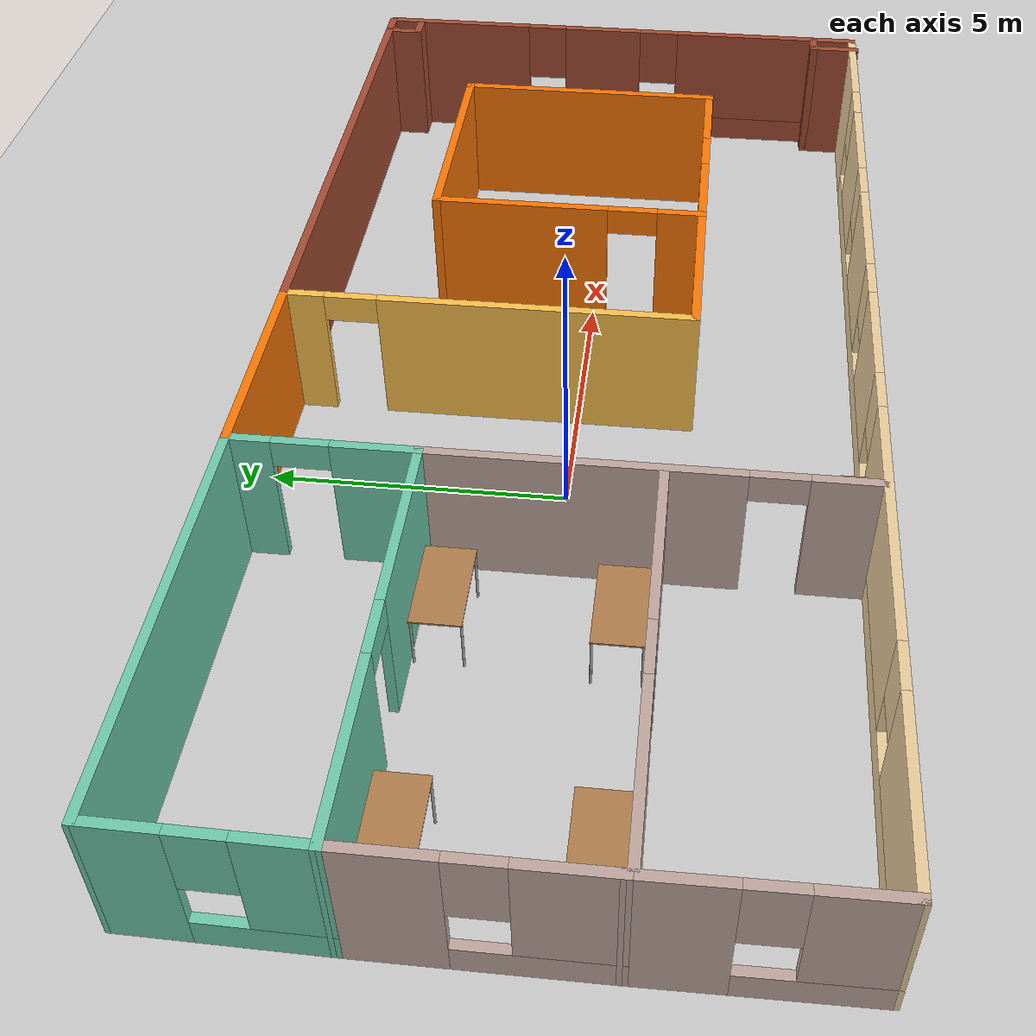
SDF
<sdf version="1.6">
 <world name="default">
  <model name="ground_plane">
   <static>1</static>
   <link name="link">
    <collision name="collision">
     <geometry><plane><normal>0 0 1</normal><size>100 100</size></plane></geometry>
     <surface>
      <contact><collide_bitmask>65535</collide_bitmask></contact>
      <friction><ode><mu>100</mu><mu2>50</mu2></ode></friction>
     </surface>
    </collision>
    <visual name="visual">
     <cast_shadows>0</cast_shadows>
     <geometry><plane><normal>0 0 1</normal><size>100 100</size></plane></geometry>
     <material>
      <script><uri>file://media/materials/scripts/gazebo.material</uri><name>Gazebo/Grey</name></script>
     </material>
    </visual>
   </link>
  </model>
  <model name="Some_Building">
   <pose>1.71741 0.02283 0 0 -0 0</pose>
   <link name="Wall_13">
    <pose>3.76972 -1.9787 0 0 -0 0</pose>
    <visual name="Wall_13_Visual_0">
     <pose>-1.25808 0 1.25 0 -0 0</pose>
     <geometry><box><size>4.73385 0.15 2.5</size></box></geometry>
     <material>
      <script><uri>file://media/materials/scripts/gazebo.material</uri><name>Gazebo/Grey</name></script>
      <ambient>0.996078 0.47451 0.0196078 1</ambient>
     </material>
     <meta><layer>0</layer></meta>
    </visual>
    <collision name="Wall_13_Collision_0">
     <geometry><box><size>4.73385 0.15 2.5</size></box></geometry>
     <pose>-1.25808 0 1.25 0 -0 0</pose>
    </collision>
    <visual name="Wall_13_Visual_1">
     <pose>2.81692 0 1.25 0 -0 0</pose>
     <geometry><box><size>1.61615 0.15 2.5</size></box></geometry>
     <material>
      <script><uri>file://media/materials/scripts/gazebo.material</uri><name>Gazebo/Grey</name></script>
      <ambient>0.996078 0.47451 0.0196078 1</ambient>
     </material>
     <meta><layer>0</layer></meta>
    </visual>
    <collision name="Wall_13_Collision_1">
     <geometry><box><size>1.61615 0.15 2.5</size></box></geometry>
     <pose>2.81692 0 1.25 0 -0 0</pose>
    </collision>
    <visual name="Wall_13_Visual_2">
     <pose>1.55885 0 2.25 0 -0 0</pose>
     <geometry><box><size>0.9 0.15 0.5</size></box></geometry>
     <material>
      <script><uri>file://media/materials/scripts/gazebo.material</uri><name>Gazebo/Grey</name></script>
      <ambient>0.996078 0.47451 0.0196078 1</ambient>
     </material>
     <meta><layer>0</layer></meta>
    </visual>
    <collision name="Wall_13_Collision_2">
     <geometry><box><size>0.9 0.15 0.5</size></box></geometry>
     <pose>1.55885 0 2.25 0 -0 0</pose>
    </collision>
   </link>
   <link name="Wall_14">
    <collision name="Wall_14_Collision">
     <geometry><box><size>5 0.15 2.5</size></box></geometry>
     <pose>0 0 1.25 0 -0 0</pose>
    </collision>
    <visual name="Wall_14_Visual">
     <pose>0 0 1.25 0 -0 0</pose>
     <geometry><box><size>5 0.15 2.5</size></box></geometry>
     <material>
      <script><uri>file://media/materials/scripts/gazebo.material</uri><name>Gazebo/Grey</name></script>
      <ambient>0.996078 0.47451 0.0196078 1</ambient>
     </material>
     <meta><layer>0</layer></meta>
    </visual>
    <pose>7.31972 0.446304 0 0 -0 1.5708</pose>
   </link>
   <link name="Wall_15">
    <collision name="Wall_15_Collision">
     <geometry><box><size>4.25 0.15 2.5</size></box></geometry>
     <pose>0 0 1.25 0 -0 0</pose>
    </collision>
    <visual name="Wall_15_Visual">
     <pose>0 0 1.25 0 -0 0</pose>
     <geometry><box><size>4.25 0.15 2.5</size></box></geometry>
     <material>
      <script><uri>file://media/materials/scripts/gazebo.material</uri><name>Gazebo/Grey</name></script>
      <ambient>0.996078 0.47451 0.0196078 1</ambient>
     </material>
     <meta><layer>0</layer></meta>
    </visual>
    <pose>5.26972 2.8713 0 0 -0 3.14159</pose>
   </link>
   <link name="Wall_16">
    <pose>3.21972 0.446304 0 0 0 -1.5708</pose>
    <visual name="Wall_16_Visual_0">
     <pose>-0.891713 0 1.25 0 -0 0</pose>
     <geometry><box><size>3.21657 0.15 2.5</size></box></geometry>
     <material>
      <script><uri>file://media/materials/scripts/gazebo.material</uri><name>Gazebo/Grey</name></script>
      <ambient>0.996078 0.47451 0.0196078 1</ambient>
     </material>
     <meta><layer>0</layer></meta>
    </visual>
    <collision name="Wall_16_Collision_0">
     <geometry><box><size>3.21657 0.15 2.5</size></box></geometry>
     <pose>-0.891713 0 1.25 0 -0 0</pose>
    </collision>
    <visual name="Wall_16_Visual_1">
     <pose>2.05829 0 1.25 0 -0 0</pose>
     <geometry><box><size>0.883427 0.15 2.5</size></box></geometry>
     <material>
      <script><uri>file://media/materials/scripts/gazebo.material</uri><name>Gazebo/Grey</name></script>
      <ambient>0.996078 0.47451 0.0196078 1</ambient>
     </material>
     <meta><layer>0</layer></meta>
    </visual>
    <collision name="Wall_16_Collision_1">
     <geometry><box><size>0.883427 0.15 2.5</size></box></geometry>
     <pose>2.05829 0 1.25 0 -0 0</pose>
    </collision>
    <visual name="Wall_16_Visual_2">
     <pose>1.16657 0 2.25 0 -0 0</pose>
     <geometry><box><size>0.9 0.15 0.5</size></box></geometry>
     <material>
      <script><uri>file://media/materials/scripts/gazebo.material</uri><name>Gazebo/Grey</name></script>
      <ambient>0.996078 0.47451 0.0196078 1</ambient>
     </material>
     <meta><layer>0</layer></meta>
    </visual>
    <collision name="Wall_16_Collision_2">
     <geometry><box><size>0.9 0.15 0.5</size></box></geometry>
     <pose>1.16657 0 2.25 0 -0 0</pose>
    </collision>
   </link>
   <link name="Wall_18">
    <pose>-3.34038 -1.41375 0 0 0 -1.5708</pose>
    <visual name="Wall_18_Visual_0">
     <pose>-1.01152 0 1.25 0 -0 0</pose>
     <geometry><box><size>4.99707 0.15 2.5</size></box></geometry>
     <material>
      <script><uri>file://media/materials/scripts/gazebo.material</uri><name>Gazebo/Grey</name></script>
      <ambient>0.760784 0.662745 0.627451 1</ambient>
     </material>
     <meta><layer>0</layer></meta>
    </visual>
    <collision name="Wall_18_Collision_0">
     <geometry><box><size>4.99707 0.15 2.5</size></box></geometry>
     <pose>-1.01152 0 1.25 0 -0 0</pose>
    </collision>
    <visual name="Wall_18_Visual_1">
     <pose>2.94853 0 1.25 0 -0 0</pose>
     <geometry><box><size>1.12305 0.15 2.5</size></box></geometry>
     <material>
      <script><uri>file://media/materials/scripts/gazebo.material</uri><name>Gazebo/Grey</name></script>
      <ambient>0.760784 0.662745 0.627451 1</ambient>
     </material>
     <meta><layer>0</layer></meta>
    </visual>
    <collision name="Wall_18_Collision_1">
     <geometry><box><size>1.12305 0.15 2.5</size></box></geometry>
     <pose>2.94853 0 1.25 0 -0 0</pose>
    </collision>
    <visual name="Wall_18_Visual_2">
     <pose>1.93701 0 2.25 0 -0 0</pose>
     <geometry><box><size>0.9 0.15 0.5</size></box></geometry>
     <material>
      <script><uri>file://media/materials/scripts/gazebo.material</uri><name>Gazebo/Grey</name></script>
      <ambient>0.760784 0.662745 0.627451 1</ambient>
     </material>
     <meta><layer>0</layer></meta>
    </visual>
    <collision name="Wall_18_Collision_2">
     <geometry><box><size>0.9 0.15 0.5</size></box></geometry>
     <pose>1.93701 0 2.25 0 -0 0</pose>
    </collision>
   </link>
   <link name="Wall_2">
    <pose>9.94117 0.003093 0 0 0 -1.5708</pose>
    <visual name="Wall_2_Visual_0">
     <pose>-3.49485 0 1.25 0 -0 0</pose>
     <geometry><box><size>3.0103 0.15 2.5</size></box></geometry>
     <material>
      <script><uri>file://media/materials/scripts/gazebo.material</uri><name>Gazebo/Bricks</name></script>
      <ambient>1 1 1 1</ambient>
     </material>
     <meta><layer>0</layer></meta>
    </visual>
    <collision name="Wall_2_Collision_0">
     <geometry><box><size>3.0103 0.15 2.5</size></box></geometry>
     <pose>-3.49485 0 1.25 0 -0 0</pose>
    </collision>
    <visual name="Wall_2_Visual_1">
     <pose>1.50515 0 0.25 0 -0 0</pose>
     <geometry><box><size>6.9897 0.15 0.5</size></box></geometry>
     <material>
      <script><uri>file://media/materials/scripts/gazebo.material</uri><name>Gazebo/Bricks</name></script>
      <ambient>1 1 1 1</ambient>
     </material>
     <meta><layer>0</layer></meta>
    </visual>
    <collision name="Wall_2_Collision_1">
     <geometry><box><size>6.9897 0.15 0.5</size></box></geometry>
     <pose>1.50515 0 0.25 0 -0 0</pose>
    </collision>
    <visual name="Wall_2_Visual_2">
     <pose>-0.382884 0 1.5 0 -0 0</pose>
     <geometry><box><size>1.61363 0.15 2</size></box></geometry>
     <material>
      <script><uri>file://media/materials/scripts/gazebo.material</uri><name>Gazebo/Bricks</name></script>
      <ambient>1 1 1 1</ambient>
     </material>
     <meta><layer>0</layer></meta>
    </visual>
    <collision name="Wall_2_Collision_2">
     <geometry><box><size>1.61363 0.15 2</size></box></geometry>
     <pose>-0.382884 0 1.5 0 -0 0</pose>
    </collision>
    <visual name="Wall_2_Visual_3">
     <pose>3.11197 0 1.5 0 -0 0</pose>
     <geometry><box><size>3.77607 0.15 2</size></box></geometry>
     <material>
      <script><uri>file://media/materials/scripts/gazebo.material</uri><name>Gazebo/Bricks</name></script>
      <ambient>1 1 1 1</ambient>
     </material>
     <meta><layer>0</layer></meta>
    </visual>
    <collision name="Wall_2_Collision_3">
     <geometry><box><size>3.77607 0.15 2</size></box></geometry>
     <pose>3.11197 0 1.5 0 -0 0</pose>
    </collision>
    <visual name="Wall_2_Visual_4">
     <pose>-1.5897 0 1.9 0 -0 0</pose>
     <geometry><box><size>0.8 0.15 1.2</size></box></geometry>
     <material>
      <script><uri>file://media/materials/scripts/gazebo.material</uri><name>Gazebo/Bricks</name></script>
      <ambient>1 1 1 1</ambient>
     </material>
     <meta><layer>0</layer></meta>
    </visual>
    <collision name="Wall_2_Collision_4">
     <geometry><box><size>0.8 0.15 1.2</size></box></geometry>
     <pose>-1.5897 0 1.9 0 -0 0</pose>
    </collision>
    <visual name="Wall_2_Visual_5">
     <pose>0.823931 0 1.9 0 -0 0</pose>
     <geometry><box><size>0.8 0.15 1.2</size></box></geometry>
     <material>
      <script><uri>file://media/materials/scripts/gazebo.material</uri><name>Gazebo/Bricks</name></script>
      <ambient>1 1 1 1</ambient>
     </material>
     <meta><layer>0</layer></meta>
    </visual>
    <collision name="Wall_2_Collision_5">
     <geometry><box><size>0.8 0.15 1.2</size></box></geometry>
     <pose>0.823931 0 1.9 0 -0 0</pose>
    </collision>
   </link>
   <link name="Wall_23">
    <pose>-6.65398 -1.65419 0 0 -0 3.14159</pose>
    <visual name="Wall_23_Visual_0">
     <pose>-1.84756 0 1.25 0 -0 0</pose>
     <geometry><box><size>2.80488 0.15 2.5</size></box></geometry>
     <material>
      <script><uri>file://media/materials/scripts/gazebo.material</uri><name>Gazebo/Grey</name></script>
      <ambient>0.760784 0.662745 0.627451 1</ambient>
     </material>
     <meta><layer>0</layer></meta>
    </visual>
    <collision name="Wall_23_Collision_0">
     <geometry><box><size>2.80488 0.15 2.5</size></box></geometry>
     <pose>-1.84756 0 1.25 0 -0 0</pose>
    </collision>
    <visual name="Wall_23_Visual_1">
     <pose>1.85244 0 1.25 0 -0 0</pose>
     <geometry><box><size>2.79512 0.15 2.5</size></box></geometry>
     <material>
      <script><uri>file://media/materials/scripts/gazebo.material</uri><name>Gazebo/Grey</name></script>
      <ambient>0.760784 0.662745 0.627451 1</ambient>
     </material>
     <meta><layer>0</layer></meta>
    </visual>
    <collision name="Wall_23_Collision_1">
     <geometry><box><size>2.79512 0.15 2.5</size></box></geometry>
     <pose>1.85244 0 1.25 0 -0 0</pose>
    </collision>
    <visual name="Wall_23_Visual_2">
     <pose>0.004884 0 2.25 0 -0 0</pose>
     <geometry><box><size>0.9 0.15 0.5</size></box></geometry>
     <material>
      <script><uri>file://media/materials/scripts/gazebo.material</uri><name>Gazebo/Grey</name></script>
      <ambient>0.760784 0.662745 0.627451 1</ambient>
     </material>
     <meta><layer>0</layer></meta>
    </visual>
    <collision name="Wall_23_Collision_2">
     <geometry><box><size>0.9 0.15 0.5</size></box></geometry>
     <pose>0.004884 0 2.25 0 -0 0</pose>
    </collision>
   </link>
   <link name="Wall_27">
    <collision name="Wall_27_Collision">
     <geometry><box><size>6.75 0.15 2.5</size></box></geometry>
     <pose>0 0 1.25 0 -0 0</pose>
    </collision>
    <visual name="Wall_27_Visual">
     <pose>0 0 1.25 0 -0 0</pose>
     <geometry><box><size>6.75 0.15 2.5</size></box></geometry>
     <material>
      <script><uri>file://media/materials/scripts/gazebo.material</uri><name>Gazebo/Grey</name></script>
      <ambient>0.435294 0.796078 0.67451 1</ambient>
     </material>
     <meta><layer>0</layer></meta>
    </visual>
    <pose>-6.60883 4.96832 0 0 -0 0</pose>
   </link>
   <link name="Wall_28">
    <collision name="Wall_28_Collision">
     <geometry><box><size>3.75 0.15 2.5</size></box></geometry>
     <pose>0 0 1.25 0 -0 0</pose>
    </collision>
    <visual name="Wall_28_Visual">
     <pose>0 0 1.25 0 -0 0</pose>
     <geometry><box><size>3.75 0.15 2.5</size></box></geometry>
     <material>
      <script><uri>file://media/materials/scripts/gazebo.material</uri><name>Gazebo/Grey</name></script>
      <ambient>0.996078 0.47451 0.0196078 1</ambient>
     </material>
     <meta><layer>0</layer></meta>
    </visual>
    <pose>-1.50883 4.96832 0 0 -0 0</pose>
   </link>
   <link name="Wall_29">
    <collision name="Wall_29_Collision">
     <geometry><box><size>9.75 0.15 2.5</size></box></geometry>
     <pose>0 0 1.25 0 -0 0</pose>
    </collision>
    <visual name="Wall_29_Visual">
     <pose>0 0 1.25 0 -0 0</pose>
     <geometry><box><size>9.75 0.15 2.5</size></box></geometry>
     <material>
      <script><uri>file://media/materials/scripts/gazebo.material</uri><name>Gazebo/Bricks</name></script>
      <ambient>1 1 1 1</ambient>
     </material>
     <meta><layer>0</layer></meta>
    </visual>
    <pose>5.09117 4.96832 0 0 -0 0</pose>
   </link>
   <link name="Wall_3">
    <pose>0.016175 -4.92191 0 0 -0 3.14159</pose>
    <visual name="Wall_3_Visual_0">
     <pose>-8.91216 0 1.25 0 -0 0</pose>
     <geometry><box><size>2.17568 0.15 2.5</size></box></geometry>
     <material>
      <script><uri>file://media/materials/scripts/gazebo.material</uri><name>Gazebo/Grey</name></script>
      <ambient>0.921569 0.807843 0.615686 1</ambient>
     </material>
     <meta><layer>0</layer></meta>
    </visual>
    <collision name="Wall_3_Collision_0">
     <geometry><box><size>2.17568 0.15 2.5</size></box></geometry>
     <pose>-8.91216 0 1.25 0 -0 0</pose>
    </collision>
    <visual name="Wall_3_Visual_1">
     <pose>1.08784 0 0.25 0 -0 0</pose>
     <geometry><box><size>17.8243 0.15 0.5</size></box></geometry>
     <material>
      <script><uri>file://media/materials/scripts/gazebo.material</uri><name>Gazebo/Grey</name></script>
      <ambient>0.921569 0.807843 0.615686 1</ambient>
     </material>
     <meta><layer>0</layer></meta>
    </visual>
    <collision name="Wall_3_Collision_1">
     <geometry><box><size>17.8243 0.15 0.5</size></box></geometry>
     <pose>1.08784 0 0.25 0 -0 0</pose>
    </collision>
    <visual name="Wall_3_Visual_2">
     <pose>-6.01637 0 1.5 0 -0 0</pose>
     <geometry><box><size>2.0159 0.15 2</size></box></geometry>
     <material>
      <script><uri>file://media/materials/scripts/gazebo.material</uri><name>Gazebo/Grey</name></script>
      <ambient>0.921569 0.807843 0.615686 1</ambient>
     </material>
     <meta><layer>0</layer></meta>
    </visual>
    <collision name="Wall_3_Collision_2">
     <geometry><box><size>2.0159 0.15 2</size></box></geometry>
     <pose>-6.01637 0 1.5 0 -0 0</pose>
    </collision>
    <visual name="Wall_3_Visual_3">
     <pose>-3.0999 0 1.5 0 -0 0</pose>
     <geometry><box><size>2.21704 0.15 2</size></box></geometry>
     <material>
      <script><uri>file://media/materials/scripts/gazebo.material</uri><name>Gazebo/Grey</name></script>
      <ambient>0.921569 0.807843 0.615686 1</ambient>
     </material>
     <meta><layer>0</layer></meta>
    </visual>
    <collision name="Wall_3_Collision_3">
     <geometry><box><size>2.21704 0.15 2</size></box></geometry>
     <pose>-3.0999 0 1.5 0 -0 0</pose>
    </collision>
    <visual name="Wall_3_Visual_4">
     <pose>-0.153265 0 1.5 0 -0 0</pose>
     <geometry><box><size>2.07624 0.15 2</size></box></geometry>
     <material>
      <script><uri>file://media/materials/scripts/gazebo.material</uri><name>Gazebo/Grey</name></script>
      <ambient>0.921569 0.807843 0.615686 1</ambient>
     </material>
     <meta><layer>0</layer></meta>
    </visual>
    <collision name="Wall_3_Collision_4">
     <geometry><box><size>2.07624 0.15 2</size></box></geometry>
     <pose>-0.153265 0 1.5 0 -0 0</pose>
    </collision>
    <visual name="Wall_3_Visual_5">
     <pose>3.97002 0 1.5 0 -0 0</pose>
     <geometry><box><size>4.57032 0.15 2</size></box></geometry>
     <material>
      <script><uri>file://media/materials/scripts/gazebo.material</uri><name>Gazebo/Grey</name></script>
      <ambient>0.921569 0.807843 0.615686 1</ambient>
     </material>
     <meta><layer>0</layer></meta>
    </visual>
    <collision name="Wall_3_Collision_5">
     <geometry><box><size>4.57032 0.15 2</size></box></geometry>
     <pose>3.97002 0 1.5 0 -0 0</pose>
    </collision>
    <visual name="Wall_3_Visual_6">
     <pose>8.52759 0 1.5 0 -0 0</pose>
     <geometry><box><size>2.94482 0.15 2</size></box></geometry>
     <material>
      <script><uri>file://media/materials/scripts/gazebo.material</uri><name>Gazebo/Grey</name></script>
      <ambient>0.921569 0.807843 0.615686 1</ambient>
     </material>
     <meta><layer>0</layer></meta>
    </visual>
    <collision name="Wall_3_Collision_6">
     <geometry><box><size>2.94482 0.15 2</size></box></geometry>
     <pose>8.52759 0 1.5 0 -0 0</pose>
    </collision>
    <visual name="Wall_3_Visual_7">
     <pose>-7.42432 0 1.9 0 -0 0</pose>
     <geometry><box><size>0.8 0.15 1.2</size></box></geometry>
     <material>
      <script><uri>file://media/materials/scripts/gazebo.material</uri><name>Gazebo/Grey</name></script>
      <ambient>0.921569 0.807843 0.615686 1</ambient>
     </material>
     <meta><layer>0</layer></meta>
    </visual>
    <collision name="Wall_3_Collision_7">
     <geometry><box><size>0.8 0.15 1.2</size></box></geometry>
     <pose>-7.42432 0 1.9 0 -0 0</pose>
    </collision>
    <visual name="Wall_3_Visual_8">
     <pose>-4.60842 0 1.9 0 -0 0</pose>
     <geometry><box><size>0.8 0.15 1.2</size></box></geometry>
     <material>
      <script><uri>file://media/materials/scripts/gazebo.material</uri><name>Gazebo/Grey</name></script>
      <ambient>0.921569 0.807843 0.615686 1</ambient>
     </material>
     <meta><layer>0</layer></meta>
    </visual>
    <collision name="Wall_3_Collision_8">
     <geometry><box><size>0.8 0.15 1.2</size></box></geometry>
     <pose>-4.60842 0 1.9 0 -0 0</pose>
    </collision>
    <visual name="Wall_3_Visual_9">
     <pose>-1.59139 0 1.9 0 -0 0</pose>
     <geometry><box><size>0.8 0.15 1.2</size></box></geometry>
     <material>
      <script><uri>file://media/materials/scripts/gazebo.material</uri><name>Gazebo/Grey</name></script>
      <ambient>0.921569 0.807843 0.615686 1</ambient>
     </material>
     <meta><layer>0</layer></meta>
    </visual>
    <collision name="Wall_3_Collision_9">
     <geometry><box><size>0.8 0.15 1.2</size></box></geometry>
     <pose>-1.59139 0 1.9 0 -0 0</pose>
    </collision>
    <visual name="Wall_3_Visual_10">
     <pose>1.28486 0 1.9 0 -0 0</pose>
     <geometry><box><size>0.8 0.15 1.2</size></box></geometry>
     <material>
      <script><uri>file://media/materials/scripts/gazebo.material</uri><name>Gazebo/Grey</name></script>
      <ambient>0.921569 0.807843 0.615686 1</ambient>
     </material>
     <meta><layer>0</layer></meta>
    </visual>
    <collision name="Wall_3_Collision_10">
     <geometry><box><size>0.8 0.15 1.2</size></box></geometry>
     <pose>1.28486 0 1.9 0 -0 0</pose>
    </collision>
    <visual name="Wall_3_Visual_11">
     <pose>6.65518 0 1.9 0 -0 0</pose>
     <geometry><box><size>0.8 0.15 1.2</size></box></geometry>
     <material>
      <script><uri>file://media/materials/scripts/gazebo.material</uri><name>Gazebo/Grey</name></script>
      <ambient>0.921569 0.807843 0.615686 1</ambient>
     </material>
     <meta><layer>0</layer></meta>
    </visual>
    <collision name="Wall_3_Collision_11">
     <geometry><box><size>0.8 0.15 1.2</size></box></geometry>
     <pose>6.65518 0 1.9 0 -0 0</pose>
    </collision>
   </link>
   <link name="Wall_31">
    <pose>-9.9246 3.49345 0 0 0 -1.58149</pose>
    <visual name="Wall_31_Visual_0">
     <pose>-0.962755 0 1.25 0 -0 0</pose>
     <geometry><box><size>1.1744 0.15 2.5</size></box></geometry>
     <material>
      <script><uri>file://media/materials/scripts/gazebo.material</uri><name>Gazebo/Grey</name></script>
      <ambient>0.435294 0.796078 0.67451 1</ambient>
     </material>
     <meta><layer>0</layer></meta>
    </visual>
    <collision name="Wall_31_Collision_0">
     <geometry><box><size>1.1744 0.15 2.5</size></box></geometry>
     <pose>-0.962755 0 1.25 0 -0 0</pose>
    </collision>
    <visual name="Wall_31_Visual_1">
     <pose>0.587199 0 0.25 0 -0 0</pose>
     <geometry><box><size>1.92551 0.15 0.5</size></box></geometry>
     <material>
      <script><uri>file://media/materials/scripts/gazebo.material</uri><name>Gazebo/Grey</name></script>
      <ambient>0.435294 0.796078 0.67451 1</ambient>
     </material>
     <meta><layer>0</layer></meta>
    </visual>
    <collision name="Wall_31_Collision_1">
     <geometry><box><size>1.92551 0.15 0.5</size></box></geometry>
     <pose>0.587199 0 0.25 0 -0 0</pose>
    </collision>
    <visual name="Wall_31_Visual_2">
     <pose>0.987199 0 1.5 0 -0 0</pose>
     <geometry><box><size>1.12551 0.15 2</size></box></geometry>
     <material>
      <script><uri>file://media/materials/scripts/gazebo.material</uri><name>Gazebo/Grey</name></script>
      <ambient>0.435294 0.796078 0.67451 1</ambient>
     </material>
     <meta><layer>0</layer></meta>
    </visual>
    <collision name="Wall_31_Collision_2">
     <geometry><box><size>1.12551 0.15 2</size></box></geometry>
     <pose>0.987199 0 1.5 0 -0 0</pose>
    </collision>
    <visual name="Wall_31_Visual_3">
     <pose>0.024445 0 1.9 0 -0 0</pose>
     <geometry><box><size>0.8 0.15 1.2</size></box></geometry>
     <material>
      <script><uri>file://media/materials/scripts/gazebo.material</uri><name>Gazebo/Grey</name></script>
      <ambient>0.435294 0.796078 0.67451 1</ambient>
     </material>
     <meta><layer>0</layer></meta>
    </visual>
    <collision name="Wall_31_Collision_3">
     <geometry><box><size>0.8 0.15 1.2</size></box></geometry>
     <pose>0.024445 0 1.9 0 -0 0</pose>
    </collision>
   </link>
   <link name="Wall_35">
    <pose>-9.94038 0.218581 0 0 0 -1.5708</pose>
    <visual name="Wall_35_Visual_0">
     <pose>-1.11653 0 1.25 0 -0 0</pose>
     <geometry><box><size>1.51695 0.15 2.5</size></box></geometry>
     <material>
      <script><uri>file://media/materials/scripts/gazebo.material</uri><name>Gazebo/Grey</name></script>
      <ambient>0.760784 0.662745 0.627451 1</ambient>
     </material>
     <meta><layer>0</layer></meta>
    </visual>
    <collision name="Wall_35_Collision_0">
     <geometry><box><size>1.51695 0.15 2.5</size></box></geometry>
     <pose>-1.11653 0 1.25 0 -0 0</pose>
    </collision>
    <visual name="Wall_35_Visual_1">
     <pose>0.758474 0 0.25 0 -0 0</pose>
     <geometry><box><size>2.23305 0.15 0.5</size></box></geometry>
     <material>
      <script><uri>file://media/materials/scripts/gazebo.material</uri><name>Gazebo/Grey</name></script>
      <ambient>0.760784 0.662745 0.627451 1</ambient>
     </material>
     <meta><layer>0</layer></meta>
    </visual>
    <collision name="Wall_35_Collision_1">
     <geometry><box><size>2.23305 0.15 0.5</size></box></geometry>
     <pose>0.758474 0 0.25 0 -0 0</pose>
    </collision>
    <visual name="Wall_35_Visual_2">
     <pose>1.15847 0 1.5 0 -0 0</pose>
     <geometry><box><size>1.43305 0.15 2</size></box></geometry>
     <material>
      <script><uri>file://media/materials/scripts/gazebo.material</uri><name>Gazebo/Grey</name></script>
      <ambient>0.760784 0.662745 0.627451 1</ambient>
     </material>
     <meta><layer>0</layer></meta>
    </visual>
    <collision name="Wall_35_Collision_2">
     <geometry><box><size>1.43305 0.15 2</size></box></geometry>
     <pose>1.15847 0 1.5 0 -0 0</pose>
    </collision>
    <visual name="Wall_35_Visual_3">
     <pose>0.041948 0 1.9 0 -0 0</pose>
     <geometry><box><size>0.8 0.15 1.2</size></box></geometry>
     <material>
      <script><uri>file://media/materials/scripts/gazebo.material</uri><name>Gazebo/Grey</name></script>
      <ambient>0.760784 0.662745 0.627451 1</ambient>
     </material>
     <meta><layer>0</layer></meta>
    </visual>
    <collision name="Wall_35_Collision_3">
     <geometry><box><size>0.8 0.15 1.2</size></box></geometry>
     <pose>0.041948 0 1.9 0 -0 0</pose>
    </collision>
   </link>
   <link name="Wall_39">
    <pose>-9.9246 -3.25166 0 0 0 -1.56135</pose>
    <visual name="Wall_39_Visual_0">
     <pose>-1.0531 0 1.25 0 -0 0</pose>
     <geometry><box><size>1.38444 0.15 2.5</size></box></geometry>
     <material>
      <script><uri>file://media/materials/scripts/gazebo.material</uri><name>Gazebo/Grey</name></script>
      <ambient>0.760784 0.662745 0.627451 1</ambient>
     </material>
     <meta><layer>0</layer></meta>
    </visual>
    <collision name="Wall_39_Collision_0">
     <geometry><box><size>1.38444 0.15 2.5</size></box></geometry>
     <pose>-1.0531 0 1.25 0 -0 0</pose>
    </collision>
    <visual name="Wall_39_Visual_1">
     <pose>0.69222 0 0.25 0 -0 0</pose>
     <geometry><box><size>2.1062 0.15 0.5</size></box></geometry>
     <material>
      <script><uri>file://media/materials/scripts/gazebo.material</uri><name>Gazebo/Grey</name></script>
      <ambient>0.760784 0.662745 0.627451 1</ambient>
     </material>
     <meta><layer>0</layer></meta>
    </visual>
    <collision name="Wall_39_Collision_1">
     <geometry><box><size>2.1062 0.15 0.5</size></box></geometry>
     <pose>0.69222 0 0.25 0 -0 0</pose>
    </collision>
    <visual name="Wall_39_Visual_2">
     <pose>1.09222 0 1.5 0 -0 0</pose>
     <geometry><box><size>1.3062 0.15 2</size></box></geometry>
     <material>
      <script><uri>file://media/materials/scripts/gazebo.material</uri><name>Gazebo/Grey</name></script>
      <ambient>0.760784 0.662745 0.627451 1</ambient>
     </material>
     <meta><layer>0</layer></meta>
    </visual>
    <collision name="Wall_39_Collision_2">
     <geometry><box><size>1.3062 0.15 2</size></box></geometry>
     <pose>1.09222 0 1.5 0 -0 0</pose>
    </collision>
    <visual name="Wall_39_Visual_3">
     <pose>0.039122 0 1.9 0 -0 0</pose>
     <geometry><box><size>0.8 0.15 1.2</size></box></geometry>
     <material>
      <script><uri>file://media/materials/scripts/gazebo.material</uri><name>Gazebo/Grey</name></script>
      <ambient>0.760784 0.662745 0.627451 1</ambient>
     </material>
     <meta><layer>0</layer></meta>
    </visual>
    <collision name="Wall_39_Collision_3">
     <geometry><box><size>0.8 0.15 1.2</size></box></geometry>
     <pose>0.039122 0 1.9 0 -0 0</pose>
    </collision>
   </link>
   <link name="Wall_41">
    <collision name="Wall_41_Collision">
     <geometry><box><size>0.75 0.15 2.5</size></box></geometry>
     <pose>0 0 1.25 0 -0 0</pose>
    </collision>
    <visual name="Wall_41_Visual">
     <pose>0 0 1.25 0 -0 0</pose>
     <geometry><box><size>0.75 0.15 2.5</size></box></geometry>
     <material>
      <script><uri>file://media/materials/scripts/gazebo.material</uri><name>Gazebo/Bricks</name></script>
      <ambient>1 1 1 1</ambient>
     </material>
     <meta><layer>0</layer></meta>
    </visual>
    <pose>9.46317 4.64808 0 0 0 -1.5708</pose>
   </link>
   <link name="Wall_42">
    <collision name="Wall_42_Collision">
     <geometry><box><size>0.5 0.15 2.5</size></box></geometry>
     <pose>0 0 1.25 0 -0 0</pose>
    </collision>
    <visual name="Wall_42_Visual">
     <pose>0 0 1.25 0 -0 0</pose>
     <geometry><box><size>0.5 0.15 2.5</size></box></geometry>
     <material>
      <script><uri>file://media/materials/scripts/gazebo.material</uri><name>Gazebo/Bricks</name></script>
      <ambient>1 1 1 1</ambient>
     </material>
     <meta><layer>0</layer></meta>
    </visual>
    <pose>9.63817 4.34808 0 0 -0 0</pose>
   </link>
   <link name="Wall_45">
    <collision name="Wall_45_Collision">
     <geometry><box><size>0.5 0.15 2.5</size></box></geometry>
     <pose>0 0 1.25 0 -0 0</pose>
    </collision>
    <visual name="Wall_45_Visual">
     <pose>0 0 1.25 0 -0 0</pose>
     <geometry><box><size>0.5 0.15 2.5</size></box></geometry>
     <material>
      <script><uri>file://media/materials/scripts/gazebo.material</uri><name>Gazebo/Bricks</name></script>
      <ambient>1 1 1 1</ambient>
     </material>
     <meta><layer>0</layer></meta>
    </visual>
    <pose>9.75078 -4.11912 0 0 -0 3.14159</pose>
   </link>
   <link name="Wall_46">
    <collision name="Wall_46_Collision">
     <geometry><box><size>1 0.15 2.5</size></box></geometry>
     <pose>0 0 1.25 0 -0 0</pose>
    </collision>
    <visual name="Wall_46_Visual">
     <pose>0 0 1.25 0 -0 0</pose>
     <geometry><box><size>1 0.15 2.5</size></box></geometry>
     <material>
      <script><uri>file://media/materials/scripts/gazebo.material</uri><name>Gazebo/Bricks</name></script>
      <ambient>1 1 1 1</ambient>
     </material>
     <meta><layer>0</layer></meta>
    </visual>
    <pose>9.57578 -4.54412 0 0 0 -1.5708</pose>
   </link>
   <link name="Wall_5">
    <pose>-3.34038 3.4463 0 0 0 -1.5708</pose>
    <visual name="Wall_5_Visual_0">
     <pose>-1.16455 0 1.25 0 -0 0</pose>
     <geometry><box><size>0.670906 0.15 2.5</size></box></geometry>
     <material>
      <script><uri>file://media/materials/scripts/gazebo.material</uri><name>Gazebo/Grey</name></script>
      <ambient>0.435294 0.796078 0.67451 1</ambient>
     </material>
     <meta><layer>0</layer></meta>
    </visual>
    <collision name="Wall_5_Collision_0">
     <geometry><box><size>0.670906 0.15 2.5</size></box></geometry>
     <pose>-1.16455 0 1.25 0 -0 0</pose>
    </collision>
    <visual name="Wall_5_Visual_1">
     <pose>0.785453 0 1.25 0 -0 0</pose>
     <geometry><box><size>1.42909 0.15 2.5</size></box></geometry>
     <material>
      <script><uri>file://media/materials/scripts/gazebo.material</uri><name>Gazebo/Grey</name></script>
      <ambient>0.435294 0.796078 0.67451 1</ambient>
     </material>
     <meta><layer>0</layer></meta>
    </visual>
    <collision name="Wall_5_Collision_1">
     <geometry><box><size>1.42909 0.15 2.5</size></box></geometry>
     <pose>0.785453 0 1.25 0 -0 0</pose>
    </collision>
    <visual name="Wall_5_Visual_2">
     <pose>-0.379094 0 2.25 0 -0 0</pose>
     <geometry><box><size>0.9 0.15 0.5</size></box></geometry>
     <material>
      <script><uri>file://media/materials/scripts/gazebo.material</uri><name>Gazebo/Grey</name></script>
      <ambient>0.435294 0.796078 0.67451 1</ambient>
     </material>
     <meta><layer>0</layer></meta>
    </visual>
    <collision name="Wall_5_Collision_2">
     <geometry><box><size>0.9 0.15 0.5</size></box></geometry>
     <pose>-0.379094 0 2.25 0 -0 0</pose>
    </collision>
   </link>
   <link name="Wall_6">
    <pose>-6.64038 2.01994 0 0 0 -3.14118</pose>
    <visual name="Wall_6_Visual_0">
     <pose>-1.88302 0 1.25 0 -0 0</pose>
     <geometry><box><size>2.98397 0.15 2.5</size></box></geometry>
     <material>
      <script><uri>file://media/materials/scripts/gazebo.material</uri><name>Gazebo/Grey</name></script>
      <ambient>0.435294 0.796078 0.67451 1</ambient>
     </material>
     <meta><layer>0</layer></meta>
    </visual>
    <collision name="Wall_6_Collision_0">
     <geometry><box><size>2.98397 0.15 2.5</size></box></geometry>
     <pose>-1.88302 0 1.25 0 -0 0</pose>
    </collision>
    <visual name="Wall_6_Visual_1">
     <pose>1.94198 0 1.25 0 -0 0</pose>
     <geometry><box><size>2.86603 0.15 2.5</size></box></geometry>
     <material>
      <script><uri>file://media/materials/scripts/gazebo.material</uri><name>Gazebo/Grey</name></script>
      <ambient>0.435294 0.796078 0.67451 1</ambient>
     </material>
     <meta><layer>0</layer></meta>
    </visual>
    <collision name="Wall_6_Collision_1">
     <geometry><box><size>2.86603 0.15 2.5</size></box></geometry>
     <pose>1.94198 0 1.25 0 -0 0</pose>
    </collision>
    <visual name="Wall_6_Visual_2">
     <pose>0.058966 0 2.25 0 -0 0</pose>
     <geometry><box><size>0.9 0.15 0.5</size></box></geometry>
     <material>
      <script><uri>file://media/materials/scripts/gazebo.material</uri><name>Gazebo/Grey</name></script>
      <ambient>0.435294 0.796078 0.67451 1</ambient>
     </material>
     <meta><layer>0</layer></meta>
    </visual>
    <collision name="Wall_6_Collision_2">
     <geometry><box><size>0.9 0.15 0.5</size></box></geometry>
     <pose>0.058966 0 2.25 0 -0 0</pose>
    </collision>
   </link>
   <link name="Wall_9">
    <pose>0.219724 1.4463 0 0 0 -1.5708</pose>
    <visual name="Wall_9_Visual_0">
     <pose>-3.16455 0 1.25 0 -0 0</pose>
     <geometry><box><size>0.670906 0.15 2.5</size></box></geometry>
     <material>
      <script><uri>file://media/materials/scripts/gazebo.material</uri><name>Gazebo/Grey</name></script>
      <ambient>1 0.764706 0.305882 1</ambient>
     </material>
     <meta><layer>0</layer></meta>
    </visual>
    <collision name="Wall_9_Collision_0">
     <geometry><box><size>0.670906 0.15 2.5</size></box></geometry>
     <pose>-3.16455 0 1.25 0 -0 0</pose>
    </collision>
    <visual name="Wall_9_Visual_1">
     <pose>0.785453 0 1.25 0 -0 0</pose>
     <geometry><box><size>5.42909 0.15 2.5</size></box></geometry>
     <material>
      <script><uri>file://media/materials/scripts/gazebo.material</uri><name>Gazebo/Grey</name></script>
      <ambient>1 0.764706 0.305882 1</ambient>
     </material>
     <meta><layer>0</layer></meta>
    </visual>
    <collision name="Wall_9_Collision_1">
     <geometry><box><size>5.42909 0.15 2.5</size></box></geometry>
     <pose>0.785453 0 1.25 0 -0 0</pose>
    </collision>
    <visual name="Wall_9_Visual_2">
     <pose>-2.37909 0 2.25 0 -0 0</pose>
     <geometry><box><size>0.9 0.15 0.5</size></box></geometry>
     <material>
      <script><uri>file://media/materials/scripts/gazebo.material</uri><name>Gazebo/Grey</name></script>
      <ambient>1 0.764706 0.305882 1</ambient>
     </material>
     <meta><layer>0</layer></meta>
    </visual>
    <collision name="Wall_9_Collision_2">
     <geometry><box><size>0.9 0.15 0.5</size></box></geometry>
     <pose>-2.37909 0 2.25 0 -0 0</pose>
    </collision>
   </link>
   <static>1</static>
  </model>
  <model name="table">
   <static>1</static>
   <link name="link">
    <collision name="surface">
     <pose>0 0 1 0 -0 0</pose>
     <geometry><box><size>1.5 0.8 0.03</size></box></geometry>
     <surface><friction><ode><mu>0.6</mu><mu2>0.6</mu2></ode></friction></surface>
    </collision>
    <visual name="visual1">
     <pose>0 0 1 0 -0 0</pose>
     <geometry><box><size>1.5 0.8 0.03</size></box></geometry>
     <material>
      <script><uri>file://media/materials/scripts/gazebo.material</uri><name>Gazebo/Wood</name></script>
     </material>
    </visual>
    <collision name="front_left_leg">
     <pose>0.68 0.38 0.5 0 -0 0</pose>
     <geometry><cylinder><radius>0.02</radius><length>1</length></cylinder></geometry>
    </collision>
    <visual name="front_left_leg">
     <pose>0.68 0.38 0.5 0 -0 0</pose>
     <geometry><cylinder><radius>0.02</radius><length>1</length></cylinder></geometry>
     <material>
      <script><uri>file://media/materials/scripts/gazebo.material</uri><name>Gazebo/Grey</name></script>
     </material>
    </visual>
    <collision name="front_right_leg">
     <pose>0.68 -0.38 0.5 0 -0 0</pose>
     <geometry><cylinder><radius>0.02</radius><length>1</length></cylinder></geometry>
    </collision>
    <visual name="front_right_leg">
     <pose>0.68 -0.38 0.5 0 -0 0</pose>
     <geometry><cylinder><radius>0.02</radius><length>1</length></cylinder></geometry>
     <material>
      <script><uri>file://media/materials/scripts/gazebo.material</uri><name>Gazebo/Grey</name></script>
     </material>
    </visual>
    <collision name="back_right_leg">
     <pose>-0.68 -0.38 0.5 0 -0 0</pose>
     <geometry><cylinder><radius>0.02</radius><length>1</length></cylinder></geometry>
    </collision>
    <visual name="back_right_leg">
     <pose>-0.68 -0.38 0.5 0 -0 0</pose>
     <geometry><cylinder><radius>0.02</radius><length>1</length></cylinder></geometry>
     <material>
      <script><uri>file://media/materials/scripts/gazebo.material</uri><name>Gazebo/Grey</name></script>
     </material>
    </visual>
    <collision name="back_left_leg">
     <pose>-0.68 0.38 0.5 0 -0 0</pose>
     <geometry><cylinder><radius>0.02</radius><length>1</length></cylinder></geometry>
    </collision>
    <visual name="back_left_leg">
     <pose>-0.68 0.38 0.5 0 -0 0</pose>
     <geometry><cylinder><radius>0.02</radius><length>1</length></cylinder></geometry>
     <material>
      <script><uri>file://media/materials/scripts/gazebo.material</uri><name>Gazebo/Grey</name></script>
     </material>
    </visual>
   </link>
   <pose>-3.04117 -1.13093 0 0 -0 0</pose>
  </model>
  <model name="table_clone">
   <static>1</static>
   <link name="link">
    <collision name="surface">
     <pose>0 0 1 0 -0 0</pose>
     <geometry><box><size>1.5 0.8 0.03</size></box></geometry>
     <surface><friction><ode><mu>0.6</mu><mu2>0.6</mu2></ode></friction></surface>
    </collision>
    <visual name="visual1">
     <pose>0 0 1 0 -0 0</pose>
     <geometry><box><size>1.5 0.8 0.03</size></box></geometry>
     <material>
      <script><uri>file://media/materials/scripts/gazebo.material</uri><name>Gazebo/Wood</name></script>
     </material>
    </visual>
    <collision name="front_left_leg">
     <pose>0.68 0.38 0.5 0 -0 0</pose>
     <geometry><cylinder><radius>0.02</radius><length>1</length></cylinder></geometry>
    </collision>
    <visual name="front_left_leg">
     <pose>0.68 0.38 0.5 0 -0 0</pose>
     <geometry><cylinder><radius>0.02</radius><length>1</length></cylinder></geometry>
     <material>
      <script><uri>file://media/materials/scripts/gazebo.material</uri><name>Gazebo/Grey</name></script>
     </material>
    </visual>
    <collision name="front_right_leg">
     <pose>0.68 -0.38 0.5 0 -0 0</pose>
     <geometry><cylinder><radius>0.02</radius><length>1</length></cylinder></geometry>
    </collision>
    <visual name="front_right_leg">
     <pose>0.68 -0.38 0.5 0 -0 0</pose>
     <geometry><cylinder><radius>0.02</radius><length>1</length></cylinder></geometry>
     <material>
      <script><uri>file://media/materials/scripts/gazebo.material</uri><name>Gazebo/Grey</name></script>
     </material>
    </visual>
    <collision name="back_right_leg">
     <pose>-0.68 -0.38 0.5 0 -0 0</pose>
     <geometry><cylinder><radius>0.02</radius><length>1</length></cylinder></geometry>
    </collision>
    <visual name="back_right_leg">
     <pose>-0.68 -0.38 0.5 0 -0 0</pose>
     <geometry><cylinder><radius>0.02</radius><length>1</length></cylinder></geometry>
     <material>
      <script><uri>file://media/materials/scripts/gazebo.material</uri><name>Gazebo/Grey</name></script>
     </material>
    </visual>
    <collision name="back_left_leg">
     <pose>-0.68 0.38 0.5 0 -0 0</pose>
     <geometry><cylinder><radius>0.02</radius><length>1</length></cylinder></geometry>
    </collision>
    <visual name="back_left_leg">
     <pose>-0.68 0.38 0.5 0 -0 0</pose>
     <geometry><cylinder><radius>0.02</radius><length>1</length></cylinder></geometry>
     <material>
      <script><uri>file://media/materials/scripts/gazebo.material</uri><name>Gazebo/Grey</name></script>
     </material>
    </visual>
   </link>
   <pose>-6.92386 -1.15881 0 0 -0 0</pose>
  </model>
  <model name="table_clone_0">
   <static>1</static>
   <link name="link">
    <collision name="surface">
     <pose>0 0 1 0 -0 0</pose>
     <geometry><box><size>1.5 0.8 0.03</size></box></geometry>
     <surface><friction><ode><mu>0.6</mu><mu2>0.6</mu2></ode></friction></surface>
    </collision>
    <visual name="visual1">
     <pose>0 0 1 0 -0 0</pose>
     <geometry><box><size>1.5 0.8 0.03</size></box></geometry>
     <material>
      <script><uri>file://media/materials/scripts/gazebo.material</uri><name>Gazebo/Wood</name></script>
     </material>
    </visual>
    <collision name="front_left_leg">
     <pose>0.68 0.38 0.5 0 -0 0</pose>
     <geometry><cylinder><radius>0.02</radius><length>1</length></cylinder></geometry>
    </collision>
    <visual name="front_left_leg">
     <pose>0.68 0.38 0.5 0 -0 0</pose>
     <geometry><cylinder><radius>0.02</radius><length>1</length></cylinder></geometry>
     <material>
      <script><uri>file://media/materials/scripts/gazebo.material</uri><name>Gazebo/Grey</name></script>
     </material>
    </visual>
    <collision name="front_right_leg">
     <pose>0.68 -0.38 0.5 0 -0 0</pose>
     <geometry><cylinder><radius>0.02</radius><length>1</length></cylinder></geometry>
    </collision>
    <visual name="front_right_leg">
     <pose>0.68 -0.38 0.5 0 -0 0</pose>
     <geometry><cylinder><radius>0.02</radius><length>1</length></cylinder></geometry>
     <material>
      <script><uri>file://media/materials/scripts/gazebo.material</uri><name>Gazebo/Grey</name></script>
     </material>
    </visual>
    <collision name="back_right_leg">
     <pose>-0.68 -0.38 0.5 0 -0 0</pose>
     <geometry><cylinder><radius>0.02</radius><length>1</length></cylinder></geometry>
    </collision>
    <visual name="back_right_leg">
     <pose>-0.68 -0.38 0.5 0 -0 0</pose>
     <geometry><cylinder><radius>0.02</radius><length>1</length></cylinder></geometry>
     <material>
      <script><uri>file://media/materials/scripts/gazebo.material</uri><name>Gazebo/Grey</name></script>
     </material>
    </visual>
    <collision name="back_left_leg">
     <pose>-0.68 0.38 0.5 0 -0 0</pose>
     <geometry><cylinder><radius>0.02</radius><length>1</length></cylinder></geometry>
    </collision>
    <visual name="back_left_leg">
     <pose>-0.68 0.38 0.5 0 -0 0</pose>
     <geometry><cylinder><radius>0.02</radius><length>1</length></cylinder></geometry>
     <material>
      <script><uri>file://media/materials/scripts/gazebo.material</uri><name>Gazebo/Grey</name></script>
     </material>
    </visual>
   </link>
   <pose>-6.94618 1.51813 0 0 -0 0</pose>
  </model>
  <model name="table_clone_1">
   <static>1</static>
   <link name="link">
    <collision name="surface">
     <pose>0 0 1 0 -0 0</pose>
     <geometry><box><size>1.5 0.8 0.03</size></box></geometry>
     <surface><friction><ode><mu>0.6</mu><mu2>0.6</mu2></ode></friction></surface>
    </collision>
    <visual name="visual1">
     <pose>0 0 1 0 -0 0</pose>
     <geometry><box><size>1.5 0.8 0.03</size></box></geometry>
     <material>
      <script><uri>file://media/materials/scripts/gazebo.material</uri><name>Gazebo/Wood</name></script>
     </material>
    </visual>
    <collision name="front_left_leg">
     <pose>0.68 0.38 0.5 0 -0 0</pose>
     <geometry><cylinder><radius>0.02</radius><length>1</length></cylinder></geometry>
    </collision>
    <visual name="front_left_leg">
     <pose>0.68 0.38 0.5 0 -0 0</pose>
     <geometry><cylinder><radius>0.02</radius><length>1</length></cylinder></geometry>
     <material>
      <script><uri>file://media/materials/scripts/gazebo.material</uri><name>Gazebo/Grey</name></script>
     </material>
    </visual>
    <collision name="front_right_leg">
     <pose>0.68 -0.38 0.5 0 -0 0</pose>
     <geometry><cylinder><radius>0.02</radius><length>1</length></cylinder></geometry>
    </collision>
    <visual name="front_right_leg">
     <pose>0.68 -0.38 0.5 0 -0 0</pose>
     <geometry><cylinder><radius>0.02</radius><length>1</length></cylinder></geometry>
     <material>
      <script><uri>file://media/materials/scripts/gazebo.material</uri><name>Gazebo/Grey</name></script>
     </material>
    </visual>
    <collision name="back_right_leg">
     <pose>-0.68 -0.38 0.5 0 -0 0</pose>
     <geometry><cylinder><radius>0.02</radius><length>1</length></cylinder></geometry>
    </collision>
    <visual name="back_right_leg">
     <pose>-0.68 -0.38 0.5 0 -0 0</pose>
     <geometry><cylinder><radius>0.02</radius><length>1</length></cylinder></geometry>
     <material>
      <script><uri>file://media/materials/scripts/gazebo.material</uri><name>Gazebo/Grey</name></script>
     </material>
    </visual>
    <collision name="back_left_leg">
     <pose>-0.68 0.38 0.5 0 -0 0</pose>
     <geometry><cylinder><radius>0.02</radius><length>1</length></cylinder></geometry>
    </collision>
    <visual name="back_left_leg">
     <pose>-0.68 0.38 0.5 0 -0 0</pose>
     <geometry><cylinder><radius>0.02</radius><length>1</length></cylinder></geometry>
     <material>
      <script><uri>file://media/materials/scripts/gazebo.material</uri><name>Gazebo/Grey</name></script>
     </material>
    </visual>
   </link>
   <pose>-2.9301 1.53604 0 0 -0 0</pose>
  </model>
  <model name="bookshelf_2">
   <static>1</static>
   <link name="link">
    <inertial><mass>1</mass></inertial>
    <collision name="back">
     <pose>0 0.005 0.6 0 -0 0</pose>
     <geometry><box><size>0.9 0.01 1.2</size></box></geometry>
    </collision>
    <visual name="visual1">
     <pose>0 0.005 0.6 0 -0 0</pose>
     <geometry><box><size>0.9 0.01 1.2</size></box></geometry>
     <material>
      <script><uri>file://media/materials/scripts/gazebo.material</uri><name>Gazebo/Wood</name></script>
     </material>
    </visual>
    <collision name="left_side">
     <pose>0.45 -0.195 0.6 0 -0 0</pose>
     <geometry><box><size>0.02 0.4 1.2</size></box></geometry>
    </collision>
    <visual name="visual2">
     <pose>0.45 -0.195 0.6 0 -0 0</pose>
     <geometry><box><size>0.02 0.4 1.2</size></box></geometry>
     <material>
      <script><uri>file://media/materials/scripts/gazebo.material</uri><name>Gazebo/Wood</name></script>
     </material>
    </visual>
    <collision name="right_side">
     <pose>-0.45 -0.195 0.6 0 -0 0</pose>
     <geometry><box><size>0.02 0.4 1.2</size></box></geometry>
    </collision>
    <visual name="visual3">
     <pose>-0.45 -0.195 0.6 0 -0 0</pose>
     <geometry><box><size>0.02 0.4 1.2</size></box></geometry>
     <material>
      <script><uri>file://media/materials/scripts/gazebo.material</uri><name>Gazebo/Wood</name></script>
     </material>
    </visual>
    <collision name="bottom">
     <pose>0 -0.195 0.03 0 -0 0</pose>
     <geometry><box><size>0.88 0.4 0.06</size></box></geometry>
    </collision>
    <visual name="visual4">
     <pose>0 -0.195 0.03 0 -0 0</pose>
     <geometry><box><size>0.88 0.4 0.06</size></box></geometry>
     <material>
      <script><uri>file://media/materials/scripts/gazebo.material</uri><name>Gazebo/Wood</name></script>
     </material>
    </visual>
    <collision name="top">
     <pose>0 -0.195 1.19 0 -0 0</pose>
     <geometry><box><size>0.88 0.4 0.02</size></box></geometry>
    </collision>
    <visual name="visual5">
     <pose>0 -0.195 1.19 0 -0 0</pose>
     <geometry><box><size>0.88 0.4 0.02</size></box></geometry>
     <material>
      <script><uri>file://media/materials/scripts/gazebo.material</uri><name>Gazebo/Wood</name></script>
     </material>
    </visual>
    <collision name="low_shelf">
     <pose>0 -0.195 0.43 0 -0 0</pose>
     <geometry><box><size>0.88 0.4 0.02</size></box></geometry>
    </collision>
    <visual name="visual6">
     <pose>0 -0.195 0.43 0 -0 0</pose>
     <geometry><box><size>0.88 0.4 0.02</size></box></geometry>
     <material>
      <script><uri>file://media/materials/scripts/gazebo.material</uri><name>Gazebo/Wood</name></script>
     </material>
    </visual>
    <collision name="high_shelf">
     <pose>0 -0.195 0.8 0 -0 0</pose>
     <geometry><box><size>0.88 0.4 0.02</size></box></geometry>
    </collision>
    <visual name="visual7">
     <pose>0 -0.195 0.8 0 -0 0</pose>
     <geometry><box><size>0.88 0.4 0.02</size></box></geometry>
     <material>
      <script><uri>file://media/materials/scripts/gazebo.material</uri><name>Gazebo/Wood</name></script>
     </material>
    </visual>
   </link>
   <pose>-0.722255 -4.79823 0.057447 0 -0 3.1398</pose>
  </model>
 </world>
</sdf>
